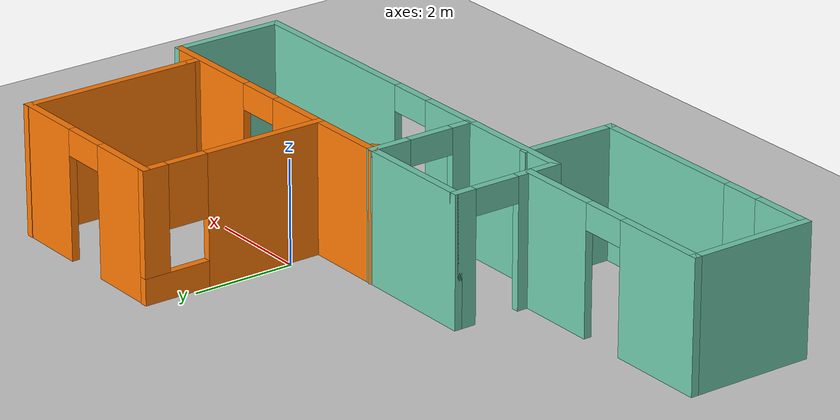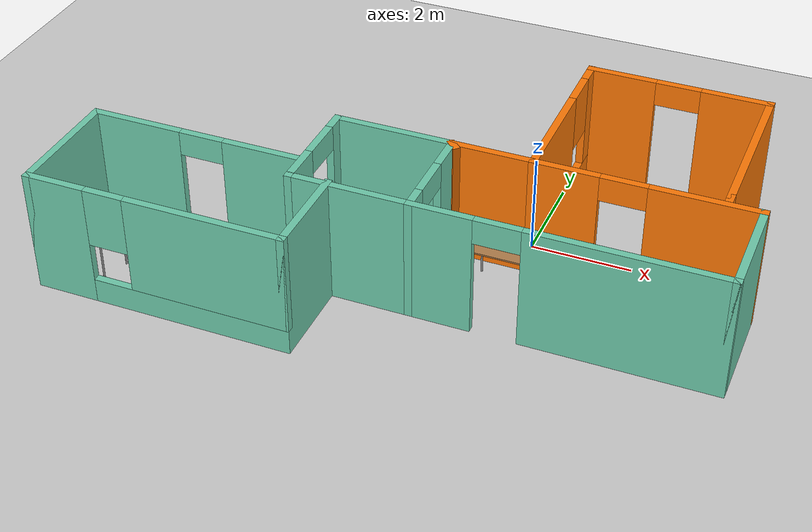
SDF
<sdf version="1.6">
 <world name="default">
  <light name="sun" type="directional">
   <pose>0 0 10 0 -0 0</pose>
   <diffuse>0.8 0.8 0.8 1</diffuse>
   <specular>0.2 0.2 0.2 1</specular>
   <attenuation>
    <range>1000</range>
    <constant>0.9</constant>
    <linear>0.01</linear>
    <quadratic>0.001</quadratic>
   </attenuation>
   <direction>-0.5 0.1 -0.9</direction>
  </light>
  <model name="ground_plane">
   <static>1</static>
   <link name="link">
    <collision name="collision">
     <geometry><plane><normal>0 0 1</normal><size>100 100</size></plane></geometry>
     <surface>
      <contact><collide_bitmask>65535</collide_bitmask></contact>
      <friction><ode><mu>100</mu><mu2>50</mu2></ode></friction>
     </surface>
    </collision>
    <visual name="visual">
     <cast_shadows>0</cast_shadows>
     <geometry><plane><normal>0 0 1</normal><size>100 100</size></plane></geometry>
     <material>
      <script><uri>file://media/materials/scripts/gazebo.material</uri><name>Gazebo/Grey</name></script>
     </material>
    </visual>
   </link>
  </model>
  <gravity>0 0 -9.8</gravity>
  <magnetic_field>6e-06 2.3e-05 -4.2e-05</magnetic_field>
  <atmosphere type="adiabatic"/>
  <physics name="default_physics" default="0" type="ode">
   <max_step_size>0.001</max_step_size>
   <real_time_factor>1</real_time_factor>
   <real_time_update_rate>1000</real_time_update_rate>
  </physics>
  <scene><ambient>0.4 0.4 0.4 1</ambient><background>0.7 0.7 0.7 1</background><shadows>1</shadows></scene>
  <spherical_coordinates>
   <surface_model>EARTH_WGS84</surface_model>
   <latitude_deg>0</latitude_deg>
   <longitude_deg>0</longitude_deg>
   <elevation>0</elevation>
   <heading_deg>0</heading_deg>
  </spherical_coordinates>
  <model name="my_model2">
   <pose>-1.87 -0.86 0 0 -0 0</pose>
   <link name="Wall_0">
    <collision name="Wall_0_Collision">
     <geometry><box><size>0.3 0.15 2.5</size></box></geometry>
     <pose>0 0 1.25 0 -0 0</pose>
    </collision>
    <visual name="Wall_0_Visual">
     <pose>0 0 1.25 0 -0 0</pose>
     <geometry><box><size>0.3 0.15 2.5</size></box></geometry>
     <material>
      <script><uri>file://media/materials/scripts/gazebo.material</uri><name>Gazebo/Grey</name></script>
      <ambient>0.996078 0.47451 0.0196078 1</ambient>
     </material>
     <meta><layer>0</layer></meta>
    </visual>
    <pose>0.473033 0.086967 0 0 0 -0.785398</pose>
   </link>
   <link name="Wall_1">
    <pose>0.43 -0.91 0 0 0 -1.5708</pose>
    <visual name="Wall_1_Visual_0">
     <pose>-0.712548 0 1.25 0 -0 0</pose>
     <geometry><box><size>0.825118 0.15 2.5</size></box></geometry>
     <material>
      <script><uri>file://media/materials/scripts/gazebo.material</uri><name>Gazebo/Grey</name></script>
      <ambient>0.435294 0.796078 0.67451 1</ambient>
     </material>
     <meta><layer>0</layer></meta>
    </visual>
    <collision name="Wall_1_Collision_0">
     <geometry><box><size>0.825118 0.15 2.5</size></box></geometry>
     <pose>-0.712548 0 1.25 0 -0 0</pose>
    </collision>
    <visual name="Wall_1_Visual_1">
     <pose>0.862559 0 1.25 0 -0 0</pose>
     <geometry><box><size>0.525096 0.15 2.5</size></box></geometry>
     <material>
      <script><uri>file://media/materials/scripts/gazebo.material</uri><name>Gazebo/Grey</name></script>
      <ambient>0.435294 0.796078 0.67451 1</ambient>
     </material>
     <meta><layer>0</layer></meta>
    </visual>
    <collision name="Wall_1_Collision_1">
     <geometry><box><size>0.525096 0.15 2.5</size></box></geometry>
     <pose>0.862559 0 1.25 0 -0 0</pose>
    </collision>
    <visual name="Wall_1_Visual_2">
     <pose>0.150011 0 2.25 0 -0 0</pose>
     <geometry><box><size>0.9 0.15 0.5</size></box></geometry>
     <material>
      <script><uri>file://media/materials/scripts/gazebo.material</uri><name>Gazebo/Grey</name></script>
      <ambient>0.435294 0.796078 0.67451 1</ambient>
     </material>
     <meta><layer>0</layer></meta>
    </visual>
    <collision name="Wall_1_Collision_2">
     <geometry><box><size>0.9 0.15 0.5</size></box></geometry>
     <pose>0.150011 0 2.25 0 -0 0</pose>
    </collision>
   </link>
   <link name="Wall_10">
    <pose>-4.105 -1.41 0 0 -0 3.14159</pose>
    <visual name="Wall_10_Visual_0">
     <pose>-1.4056 0 1.25 0 -0 0</pose>
     <geometry><box><size>1.68879 0.15 2.5</size></box></geometry>
     <material>
      <script><uri>file://media/materials/scripts/gazebo.material</uri><name>Gazebo/Grey</name></script>
      <ambient>0.435294 0.796078 0.67451 1</ambient>
     </material>
     <meta><layer>0</layer></meta>
    </visual>
    <collision name="Wall_10_Collision_0">
     <geometry><box><size>1.68879 0.15 2.5</size></box></geometry>
     <pose>-1.4056 0 1.25 0 -0 0</pose>
    </collision>
    <visual name="Wall_10_Visual_1">
     <pose>1.2944 0 1.25 0 -0 0</pose>
     <geometry><box><size>1.91121 0.15 2.5</size></box></geometry>
     <material>
      <script><uri>file://media/materials/scripts/gazebo.material</uri><name>Gazebo/Grey</name></script>
      <ambient>0.435294 0.796078 0.67451 1</ambient>
     </material>
     <meta><layer>0</layer></meta>
    </visual>
    <collision name="Wall_10_Collision_1">
     <geometry><box><size>1.91121 0.15 2.5</size></box></geometry>
     <pose>1.2944 0 1.25 0 -0 0</pose>
    </collision>
    <visual name="Wall_10_Visual_2">
     <pose>-0.111208 0 2.25 0 -0 0</pose>
     <geometry><box><size>0.9 0.15 0.5</size></box></geometry>
     <material>
      <script><uri>file://media/materials/scripts/gazebo.material</uri><name>Gazebo/Grey</name></script>
      <ambient>0.435294 0.796078 0.67451 1</ambient>
     </material>
     <meta><layer>0</layer></meta>
    </visual>
    <collision name="Wall_10_Collision_2">
     <geometry><box><size>0.9 0.15 0.5</size></box></geometry>
     <pose>-0.111208 0 2.25 0 -0 0</pose>
    </collision>
   </link>
   <link name="Wall_11">
    <collision name="Wall_11_Collision">
     <geometry><box><size>2.5 0.15 2.5</size></box></geometry>
     <pose>0 0 1.25 0 -0 0</pose>
    </collision>
    <visual name="Wall_11_Visual">
     <pose>0 0 1.25 0 -0 0</pose>
     <geometry><box><size>2.5 0.15 2.5</size></box></geometry>
     <material>
      <script><uri>file://media/materials/scripts/gazebo.material</uri><name>Gazebo/Grey</name></script>
      <ambient>0.435294 0.796078 0.67451 1</ambient>
     </material>
     <meta><layer>0</layer></meta>
    </visual>
    <pose>-6.28 -2.585 0 0 0 -1.5708</pose>
   </link>
   <link name="Wall_12">
    <pose>-3.73 -3.76 0 0 -0 0</pose>
    <visual name="Wall_12_Visual_0">
     <pose>-1.99618 0 1.25 0 -0 0</pose>
     <geometry><box><size>1.25763 0.15 2.5</size></box></geometry>
     <material>
      <script><uri>file://media/materials/scripts/gazebo.material</uri><name>Gazebo/Grey</name></script>
      <ambient>0.435294 0.796078 0.67451 1</ambient>
     </material>
     <meta><layer>0</layer></meta>
    </visual>
    <collision name="Wall_12_Collision_0">
     <geometry><box><size>1.25763 0.15 2.5</size></box></geometry>
     <pose>-1.99618 0 1.25 0 -0 0</pose>
    </collision>
    <visual name="Wall_12_Visual_1">
     <pose>0.628817 0 0.25 0 -0 0</pose>
     <geometry><box><size>3.99237 0.15 0.5</size></box></geometry>
     <material>
      <script><uri>file://media/materials/scripts/gazebo.material</uri><name>Gazebo/Grey</name></script>
      <ambient>0.435294 0.796078 0.67451 1</ambient>
     </material>
     <meta><layer>0</layer></meta>
    </visual>
    <collision name="Wall_12_Collision_1">
     <geometry><box><size>3.99237 0.15 0.5</size></box></geometry>
     <pose>0.628817 0 0.25 0 -0 0</pose>
    </collision>
    <visual name="Wall_12_Visual_2">
     <pose>1.02882 0 1.5 0 -0 0</pose>
     <geometry><box><size>3.19237 0.15 2</size></box></geometry>
     <material>
      <script><uri>file://media/materials/scripts/gazebo.material</uri><name>Gazebo/Grey</name></script>
      <ambient>0.435294 0.796078 0.67451 1</ambient>
     </material>
     <meta><layer>0</layer></meta>
    </visual>
    <collision name="Wall_12_Collision_2">
     <geometry><box><size>3.19237 0.15 2</size></box></geometry>
     <pose>1.02882 0 1.5 0 -0 0</pose>
    </collision>
    <visual name="Wall_12_Visual_3">
     <pose>-0.967367 0 1.9 0 -0 0</pose>
     <geometry><box><size>0.8 0.15 1.2</size></box></geometry>
     <material>
      <script><uri>file://media/materials/scripts/gazebo.material</uri><name>Gazebo/Grey</name></script>
      <ambient>0.435294 0.796078 0.67451 1</ambient>
     </material>
     <meta><layer>0</layer></meta>
    </visual>
    <collision name="Wall_12_Collision_3">
     <geometry><box><size>0.8 0.15 1.2</size></box></geometry>
     <pose>-0.967367 0 1.9 0 -0 0</pose>
    </collision>
   </link>
   <link name="Wall_13">
    <collision name="Wall_13_Collision">
     <geometry><box><size>2 0.15 2.5</size></box></geometry>
     <pose>0 0 1.25 0 -0 0</pose>
    </collision>
    <visual name="Wall_13_Visual">
     <pose>0 0 1.25 0 -0 0</pose>
     <geometry><box><size>2 0.15 2.5</size></box></geometry>
     <material>
      <script><uri>file://media/materials/scripts/gazebo.material</uri><name>Gazebo/Grey</name></script>
      <ambient>0.435294 0.796078 0.67451 1</ambient>
     </material>
     <meta><layer>0</layer></meta>
    </visual>
    <pose>-1.18 -2.835 0 0 -0 1.5708</pose>
   </link>
   <link name="Wall_18">
    <pose>2.02 1.95 0 0 -0 1.5708</pose>
    <visual name="Wall_18_Visual_0">
     <pose>-0.659905 0 1.25 0 -0 0</pose>
     <geometry><box><size>2.45019 0.15 2.5</size></box></geometry>
     <material>
      <script><uri>file://media/materials/scripts/gazebo.material</uri><name>Gazebo/Grey</name></script>
      <ambient>0.996078 0.47451 0.0196078 1</ambient>
     </material>
     <meta><layer>0</layer></meta>
    </visual>
    <collision name="Wall_18_Collision_0">
     <geometry><box><size>2.45019 0.15 2.5</size></box></geometry>
     <pose>-0.659905 0 1.25 0 -0 0</pose>
    </collision>
    <visual name="Wall_18_Visual_1">
     <pose>1.2251 0 0.25 0 -0 0</pose>
     <geometry><box><size>1.31981 0.15 0.5</size></box></geometry>
     <material>
      <script><uri>file://media/materials/scripts/gazebo.material</uri><name>Gazebo/Grey</name></script>
      <ambient>0.996078 0.47451 0.0196078 1</ambient>
     </material>
     <meta><layer>0</layer></meta>
    </visual>
    <collision name="Wall_18_Collision_1">
     <geometry><box><size>1.31981 0.15 0.5</size></box></geometry>
     <pose>1.2251 0 0.25 0 -0 0</pose>
    </collision>
    <visual name="Wall_18_Visual_2">
     <pose>1.62509 0 1.5 0 -0 0</pose>
     <geometry><box><size>0.519811 0.15 2</size></box></geometry>
     <material>
      <script><uri>file://media/materials/scripts/gazebo.material</uri><name>Gazebo/Grey</name></script>
      <ambient>0.996078 0.47451 0.0196078 1</ambient>
     </material>
     <meta><layer>0</layer></meta>
    </visual>
    <collision name="Wall_18_Collision_2">
     <geometry><box><size>0.519811 0.15 2</size></box></geometry>
     <pose>1.62509 0 1.5 0 -0 0</pose>
    </collision>
    <visual name="Wall_18_Visual_3">
     <pose>0.965189 0 1.9 0 -0 0</pose>
     <geometry><box><size>0.8 0.15 1.2</size></box></geometry>
     <material>
      <script><uri>file://media/materials/scripts/gazebo.material</uri><name>Gazebo/Grey</name></script>
      <ambient>0.996078 0.47451 0.0196078 1</ambient>
     </material>
     <meta><layer>0</layer></meta>
    </visual>
    <collision name="Wall_18_Collision_3">
     <geometry><box><size>0.8 0.15 1.2</size></box></geometry>
     <pose>0.965189 0 1.9 0 -0 0</pose>
    </collision>
   </link>
   <link name="Wall_19">
    <pose>3.82 3.75 0 0 -0 0</pose>
    <visual name="Wall_19_Visual_0">
     <pose>-1.16455 0 1.25 0 -0 0</pose>
     <geometry><box><size>1.42089 0.15 2.5</size></box></geometry>
     <material>
      <script><uri>file://media/materials/scripts/gazebo.material</uri><name>Gazebo/Grey</name></script>
      <ambient>0.996078 0.47451 0.0196078 1</ambient>
     </material>
     <meta><layer>0</layer></meta>
    </visual>
    <collision name="Wall_19_Collision_0">
     <geometry><box><size>1.42089 0.15 2.5</size></box></geometry>
     <pose>-1.16455 0 1.25 0 -0 0</pose>
    </collision>
    <visual name="Wall_19_Visual_1">
     <pose>1.16045 0 1.25 0 -0 0</pose>
     <geometry><box><size>1.42911 0.15 2.5</size></box></geometry>
     <material>
      <script><uri>file://media/materials/scripts/gazebo.material</uri><name>Gazebo/Grey</name></script>
      <ambient>0.996078 0.47451 0.0196078 1</ambient>
     </material>
     <meta><layer>0</layer></meta>
    </visual>
    <collision name="Wall_19_Collision_1">
     <geometry><box><size>1.42911 0.15 2.5</size></box></geometry>
     <pose>1.16045 0 1.25 0 -0 0</pose>
    </collision>
    <visual name="Wall_19_Visual_2">
     <pose>-0.004106 0 2.25 0 -0 0</pose>
     <geometry><box><size>0.9 0.15 0.5</size></box></geometry>
     <material>
      <script><uri>file://media/materials/scripts/gazebo.material</uri><name>Gazebo/Grey</name></script>
      <ambient>0.996078 0.47451 0.0196078 1</ambient>
     </material>
     <meta><layer>0</layer></meta>
    </visual>
    <collision name="Wall_19_Collision_2">
     <geometry><box><size>0.9 0.15 0.5</size></box></geometry>
     <pose>-0.004106 0 2.25 0 -0 0</pose>
    </collision>
   </link>
   <link name="Wall_2">
    <pose>3.355 -1.96 0 0 -0 0</pose>
    <visual name="Wall_2_Visual_0">
     <pose>-2.35643 0 1.25 0 -0 0</pose>
     <geometry><box><size>1.28713 0.15 2.5</size></box></geometry>
     <material>
      <script><uri>file://media/materials/scripts/gazebo.material</uri><name>Gazebo/Grey</name></script>
      <ambient>0.435294 0.796078 0.67451 1</ambient>
     </material>
     <meta><layer>0</layer></meta>
    </visual>
    <collision name="Wall_2_Collision_0">
     <geometry><box><size>1.28713 0.15 2.5</size></box></geometry>
     <pose>-2.35643 0 1.25 0 -0 0</pose>
    </collision>
    <visual name="Wall_2_Visual_1">
     <pose>1.09357 0 1.25 0 -0 0</pose>
     <geometry><box><size>3.81287 0.15 2.5</size></box></geometry>
     <material>
      <script><uri>file://media/materials/scripts/gazebo.material</uri><name>Gazebo/Grey</name></script>
      <ambient>0.435294 0.796078 0.67451 1</ambient>
     </material>
     <meta><layer>0</layer></meta>
    </visual>
    <collision name="Wall_2_Collision_1">
     <geometry><box><size>3.81287 0.15 2.5</size></box></geometry>
     <pose>1.09357 0 1.25 0 -0 0</pose>
    </collision>
    <visual name="Wall_2_Visual_2">
     <pose>-1.26287 0 2.25 0 -0 0</pose>
     <geometry><box><size>0.9 0.15 0.5</size></box></geometry>
     <material>
      <script><uri>file://media/materials/scripts/gazebo.material</uri><name>Gazebo/Grey</name></script>
      <ambient>0.435294 0.796078 0.67451 1</ambient>
     </material>
     <meta><layer>0</layer></meta>
    </visual>
    <collision name="Wall_2_Collision_2">
     <geometry><box><size>0.9 0.15 0.5</size></box></geometry>
     <pose>-1.26287 0 2.25 0 -0 0</pose>
    </collision>
   </link>
   <link name="Wall_20">
    <collision name="Wall_20_Collision">
     <geometry><box><size>3.52 0.15 2.5</size></box></geometry>
     <pose>0 0 1.25 0 -0 0</pose>
    </collision>
    <visual name="Wall_20_Visual">
     <pose>0 0 1.25 0 -0 0</pose>
     <geometry><box><size>3.52 0.15 2.5</size></box></geometry>
     <material>
      <script><uri>file://media/materials/scripts/gazebo.material</uri><name>Gazebo/Grey</name></script>
      <ambient>0.996078 0.47451 0.0196078 1</ambient>
     </material>
     <meta><layer>0</layer></meta>
    </visual>
    <pose>5.62 2.075 0 0 0 -1.5708</pose>
   </link>
   <link name="Wall_21">
    <collision name="Wall_21_Collision">
     <geometry><box><size>0.25 0.15 2.5</size></box></geometry>
     <pose>0 0 1.25 0 -0 0</pose>
    </collision>
    <visual name="Wall_21_Visual">
     <pose>0 0 1.25 0 -0 0</pose>
     <geometry><box><size>0.25 0.15 2.5</size></box></geometry>
     <material>
      <script><uri>file://media/materials/scripts/gazebo.material</uri><name>Gazebo/Grey</name></script>
      <ambient>0.996078 0.47451 0.0196078 1</ambient>
     </material>
     <meta><layer>0</layer></meta>
    </visual>
    <pose>5.62 0.34 0 0 0 -1.5708</pose>
   </link>
   <link name="Wall_3">
    <collision name="Wall_3_Collision">
     <geometry><box><size>2.25 0.15 2.5</size></box></geometry>
     <pose>0 0 1.25 0 -0 0</pose>
    </collision>
    <visual name="Wall_3_Visual">
     <pose>0 0 1.25 0 -0 0</pose>
     <geometry><box><size>2.25 0.15 2.5</size></box></geometry>
     <material>
      <script><uri>file://media/materials/scripts/gazebo.material</uri><name>Gazebo/Grey</name></script>
      <ambient>0.435294 0.796078 0.67451 1</ambient>
     </material>
     <meta><layer>0</layer></meta>
    </visual>
    <pose>6.28 -0.91 0 0 -0 1.5708</pose>
   </link>
   <link name="Wall_4">
    <pose>3.355 0.14 0 0 -0 3.14159</pose>
    <visual name="Wall_4_Visual_0">
     <pose>-1.92027 0 1.25 0 -0 0</pose>
     <geometry><box><size>2.15946 0.15 2.5</size></box></geometry>
     <material>
      <script><uri>file://media/materials/scripts/gazebo.material</uri><name>Gazebo/Grey</name></script>
      <ambient>0.996078 0.47451 0.0196078 1</ambient>
     </material>
     <meta><layer>0</layer></meta>
    </visual>
    <collision name="Wall_4_Collision_0">
     <geometry><box><size>2.15946 0.15 2.5</size></box></geometry>
     <pose>-1.92027 0 1.25 0 -0 0</pose>
    </collision>
    <visual name="Wall_4_Visual_1">
     <pose>1.52973 0 1.25 0 -0 0</pose>
     <geometry><box><size>2.94054 0.15 2.5</size></box></geometry>
     <material>
      <script><uri>file://media/materials/scripts/gazebo.material</uri><name>Gazebo/Grey</name></script>
      <ambient>0.996078 0.47451 0.0196078 1</ambient>
     </material>
     <meta><layer>0</layer></meta>
    </visual>
    <collision name="Wall_4_Collision_1">
     <geometry><box><size>2.94054 0.15 2.5</size></box></geometry>
     <pose>1.52973 0 1.25 0 -0 0</pose>
    </collision>
    <visual name="Wall_4_Visual_2">
     <pose>-0.390536 0 2.25 0 -0 0</pose>
     <geometry><box><size>0.9 0.15 0.5</size></box></geometry>
     <material>
      <script><uri>file://media/materials/scripts/gazebo.material</uri><name>Gazebo/Grey</name></script>
      <ambient>0.996078 0.47451 0.0196078 1</ambient>
     </material>
     <meta><layer>0</layer></meta>
    </visual>
    <collision name="Wall_4_Collision_2">
     <geometry><box><size>0.9 0.15 0.5</size></box></geometry>
     <pose>-0.390536 0 2.25 0 -0 0</pose>
    </collision>
   </link>
   <link name="Wall_6">
    <collision name="Wall_6_Collision">
     <geometry><box><size>2.5 0.15 2.5</size></box></geometry>
     <pose>0 0 1.25 0 -0 0</pose>
    </collision>
    <visual name="Wall_6_Visual">
     <pose>0 0 1.25 0 -0 0</pose>
     <geometry><box><size>2.5 0.15 2.5</size></box></geometry>
     <material>
      <script><uri>file://media/materials/scripts/gazebo.material</uri><name>Gazebo/Grey</name></script>
      <ambient>0.435294 0.796078 0.67451 1</ambient>
     </material>
     <meta><layer>0</layer></meta>
    </visual>
    <pose>-0.745 0.14 0 0 -0 3.14159</pose>
   </link>
   <link name="Wall_7">
    <pose>-1.92 -0.91 0 0 0 -1.5708</pose>
    <visual name="Wall_7_Visual_0">
     <pose>-0.905978 0 1.25 0 -0 0</pose>
     <geometry><box><size>0.438044 0.15 2.5</size></box></geometry>
     <material>
      <script><uri>file://media/materials/scripts/gazebo.material</uri><name>Gazebo/Grey</name></script>
      <ambient>0.435294 0.796078 0.67451 1</ambient>
     </material>
     <meta><layer>0</layer></meta>
    </visual>
    <collision name="Wall_7_Collision_0">
     <geometry><box><size>0.438044 0.15 2.5</size></box></geometry>
     <pose>-0.905978 0 1.25 0 -0 0</pose>
    </collision>
    <visual name="Wall_7_Visual_1">
     <pose>0.669022 0 1.25 0 -0 0</pose>
     <geometry><box><size>0.911956 0.15 2.5</size></box></geometry>
     <material>
      <script><uri>file://media/materials/scripts/gazebo.material</uri><name>Gazebo/Grey</name></script>
      <ambient>0.435294 0.796078 0.67451 1</ambient>
     </material>
     <meta><layer>0</layer></meta>
    </visual>
    <collision name="Wall_7_Collision_1">
     <geometry><box><size>0.911956 0.15 2.5</size></box></geometry>
     <pose>0.669022 0 1.25 0 -0 0</pose>
    </collision>
    <visual name="Wall_7_Visual_2">
     <pose>-0.236956 0 2.25 0 -0 0</pose>
     <geometry><box><size>0.9 0.15 0.5</size></box></geometry>
     <material>
      <script><uri>file://media/materials/scripts/gazebo.material</uri><name>Gazebo/Grey</name></script>
      <ambient>0.435294 0.796078 0.67451 1</ambient>
     </material>
     <meta><layer>0</layer></meta>
    </visual>
    <collision name="Wall_7_Collision_2">
     <geometry><box><size>0.9 0.15 0.5</size></box></geometry>
     <pose>-0.236956 0 2.25 0 -0 0</pose>
    </collision>
   </link>
   <link name="Wall_8">
    <collision name="Wall_8_Collision">
     <geometry><box><size>2.5 0.15 2.5</size></box></geometry>
     <pose>0 0 1.25 0 -0 0</pose>
    </collision>
    <visual name="Wall_8_Visual">
     <pose>0 0 1.25 0 -0 0</pose>
     <geometry><box><size>2.5 0.15 2.5</size></box></geometry>
     <material>
      <script><uri>file://media/materials/scripts/gazebo.material</uri><name>Gazebo/Grey</name></script>
      <ambient>0.435294 0.796078 0.67451 1</ambient>
     </material>
     <meta><layer>0</layer></meta>
    </visual>
    <pose>-0.745 -1.96 0 0 -0 0</pose>
   </link>
   <static>1</static>
  </model>
  <model name="table">
   <static>1</static>
   <link name="link">
    <collision name="surface">
     <pose>0 0 1 0 -0 0</pose>
     <geometry><box><size>1.5 0.8 0.03</size></box></geometry>
     <surface><friction><ode><mu>0.6</mu><mu2>0.6</mu2></ode></friction></surface>
    </collision>
    <visual name="visual1">
     <pose>0 0 1 0 -0 0</pose>
     <geometry><box><size>1.5 0.8 0.03</size></box></geometry>
     <material>
      <script><uri>file://media/materials/scripts/gazebo.material</uri><name>Gazebo/Wood</name></script>
     </material>
    </visual>
    <collision name="front_left_leg">
     <pose>0.68 0.38 0.5 0 -0 0</pose>
     <geometry><cylinder><radius>0.02</radius><length>1</length></cylinder></geometry>
    </collision>
    <visual name="front_left_leg">
     <pose>0.68 0.38 0.5 0 -0 0</pose>
     <geometry><cylinder><radius>0.02</radius><length>1</length></cylinder></geometry>
     <material>
      <script><uri>file://media/materials/scripts/gazebo.material</uri><name>Gazebo/Grey</name></script>
     </material>
    </visual>
    <collision name="front_right_leg">
     <pose>0.68 -0.38 0.5 0 -0 0</pose>
     <geometry><cylinder><radius>0.02</radius><length>1</length></cylinder></geometry>
    </collision>
    <visual name="front_right_leg">
     <pose>0.68 -0.38 0.5 0 -0 0</pose>
     <geometry><cylinder><radius>0.02</radius><length>1</length></cylinder></geometry>
     <material>
      <script><uri>file://media/materials/scripts/gazebo.material</uri><name>Gazebo/Grey</name></script>
     </material>
    </visual>
    <collision name="back_right_leg">
     <pose>-0.68 -0.38 0.5 0 -0 0</pose>
     <geometry><cylinder><radius>0.02</radius><length>1</length></cylinder></geometry>
    </collision>
    <visual name="back_right_leg">
     <pose>-0.68 -0.38 0.5 0 -0 0</pose>
     <geometry><cylinder><radius>0.02</radius><length>1</length></cylinder></geometry>
     <material>
      <script><uri>file://media/materials/scripts/gazebo.material</uri><name>Gazebo/Grey</name></script>
     </material>
    </visual>
    <collision name="back_left_leg">
     <pose>-0.68 0.38 0.5 0 -0 0</pose>
     <geometry><cylinder><radius>0.02</radius><length>1</length></cylinder></geometry>
    </collision>
    <visual name="back_left_leg">
     <pose>-0.68 0.38 0.5 0 -0 0</pose>
     <geometry><cylinder><radius>0.02</radius><length>1</length></cylinder></geometry>
     <material>
      <script><uri>file://media/materials/scripts/gazebo.material</uri><name>Gazebo/Grey</name></script>
     </material>
    </visual>
   </link>
   <pose>0.035633 -1.49003 0 0 -0 0</pose>
  </model>
  <model name="table_0">
   <static>1</static>
   <link name="link">
    <collision name="surface">
     <pose>0 0 1 0 -0 0</pose>
     <geometry><box><size>1.5 0.8 0.03</size></box></geometry>
     <surface><friction><ode><mu>0.6</mu><mu2>0.6</mu2></ode></friction></surface>
    </collision>
    <visual name="visual1">
     <pose>0 0 1 0 -0 0</pose>
     <geometry><box><size>1.5 0.8 0.03</size></box></geometry>
     <material>
      <script><uri>file://media/materials/scripts/gazebo.material</uri><name>Gazebo/Wood</name></script>
     </material>
    </visual>
    <collision name="front_left_leg">
     <pose>0.68 0.38 0.5 0 -0 0</pose>
     <geometry><cylinder><radius>0.02</radius><length>1</length></cylinder></geometry>
    </collision>
    <visual name="front_left_leg">
     <pose>0.68 0.38 0.5 0 -0 0</pose>
     <geometry><cylinder><radius>0.02</radius><length>1</length></cylinder></geometry>
     <material>
      <script><uri>file://media/materials/scripts/gazebo.material</uri><name>Gazebo/Grey</name></script>
     </material>
    </visual>
    <collision name="front_right_leg">
     <pose>0.68 -0.38 0.5 0 -0 0</pose>
     <geometry><cylinder><radius>0.02</radius><length>1</length></cylinder></geometry>
    </collision>
    <visual name="front_right_leg">
     <pose>0.68 -0.38 0.5 0 -0 0</pose>
     <geometry><cylinder><radius>0.02</radius><length>1</length></cylinder></geometry>
     <material>
      <script><uri>file://media/materials/scripts/gazebo.material</uri><name>Gazebo/Grey</name></script>
     </material>
    </visual>
    <collision name="back_right_leg">
     <pose>-0.68 -0.38 0.5 0 -0 0</pose>
     <geometry><cylinder><radius>0.02</radius><length>1</length></cylinder></geometry>
    </collision>
    <visual name="back_right_leg">
     <pose>-0.68 -0.38 0.5 0 -0 0</pose>
     <geometry><cylinder><radius>0.02</radius><length>1</length></cylinder></geometry>
     <material>
      <script><uri>file://media/materials/scripts/gazebo.material</uri><name>Gazebo/Grey</name></script>
     </material>
    </visual>
    <collision name="back_left_leg">
     <pose>-0.68 0.38 0.5 0 -0 0</pose>
     <geometry><cylinder><radius>0.02</radius><length>1</length></cylinder></geometry>
    </collision>
    <visual name="back_left_leg">
     <pose>-0.68 0.38 0.5 0 -0 0</pose>
     <geometry><cylinder><radius>0.02</radius><length>1</length></cylinder></geometry>
     <material>
      <script><uri>file://media/materials/scripts/gazebo.material</uri><name>Gazebo/Grey</name></script>
     </material>
    </visual>
   </link>
   <pose>-6.37698 -3.87568 0 0 -0 0</pose>
  </model>
 </world>
</sdf>
